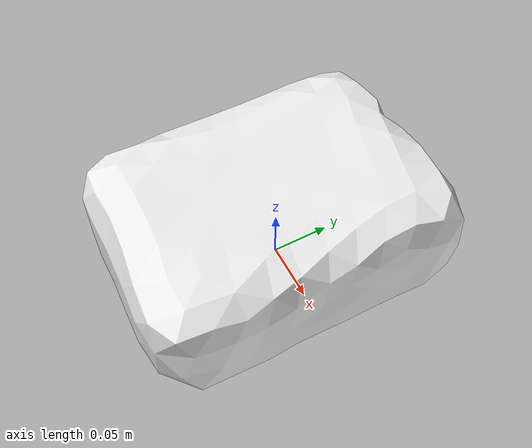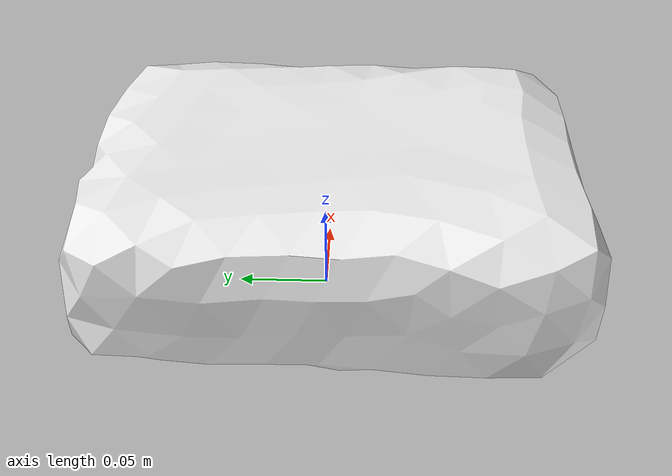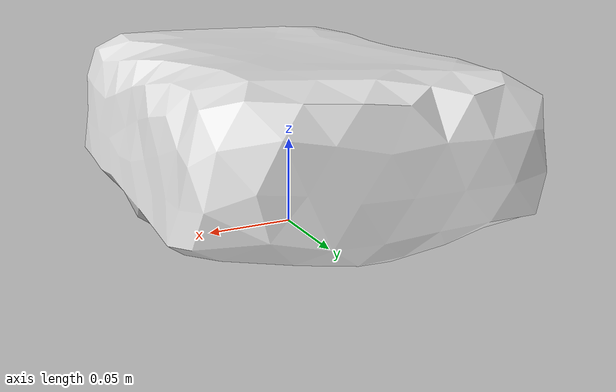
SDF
<?xml version="1.0" ?><sdf version="1.5"><model name="dhl-box-yellow">
<link name="link">
<pose>0 0 0 0 0 0</pose>
<inertial>
<pose>0.000448499 -0.00670899 0.052823 0 0 0</pose>
<mass>0.32</mass>
<inertia>
<ixx>0.00213353</ixx>
<ixy>0</ixy><iyy>0.0013254</iyy>
<ixz>0</ixz><iyz>0</iyz><izz>0.00289503</izz>
</inertia>
</inertial>
<visual name="visual">
<pose>0 0 0 0 0 0</pose>
<geometry><mesh><uri>model://dhl-box-yellow/meshes/dhl-box-yellow.dae</uri></mesh></geometry>
<material><script><uri>file://media/materials/scripts/gazebo.material</uri><name>Gazebo/WhiteGlow</name></script></material></visual>
<collision name="collision"><pose>0 0 0 0 0 0</pose><geometry><mesh><uri>model://dhl-box-yellow/meshes/dhl-box-yellow.dae</uri></mesh></geometry>
<surface><friction><ode><mu>1.000000</mu><mu2>1.000000</mu2></ode></friction></surface>
</collision></link></model></sdf>
